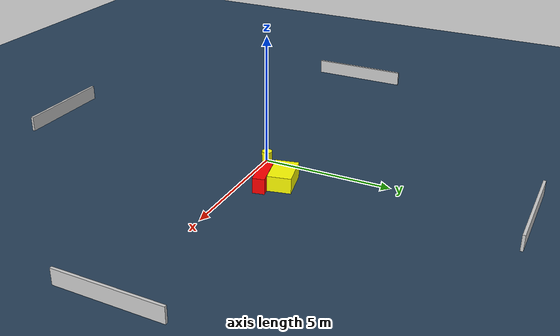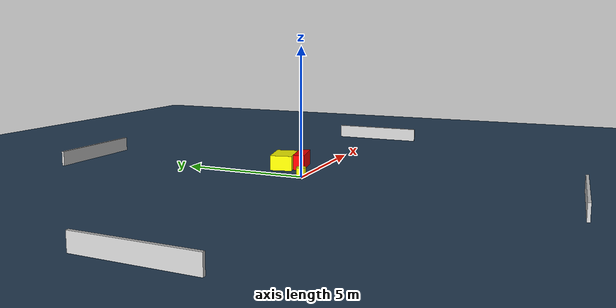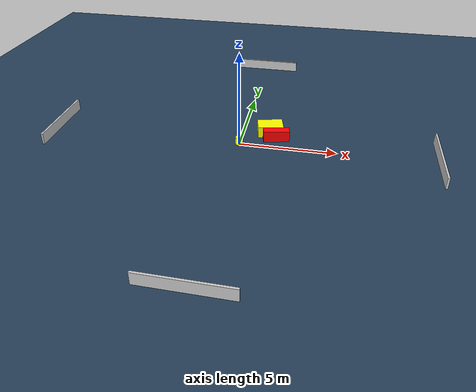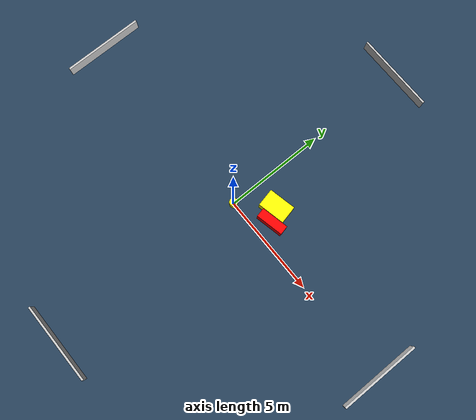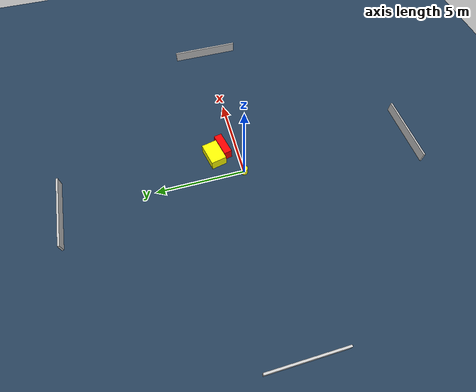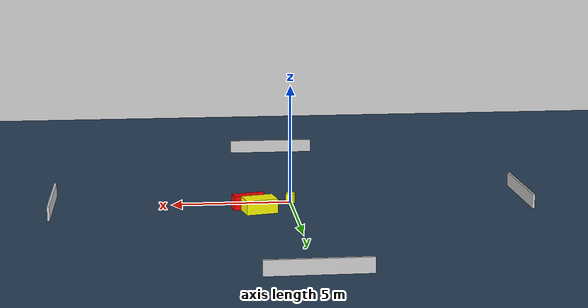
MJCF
<?xml version="1.0" ?>
<mujoco model="generated_environment">
  <option timestep="0.01" integrator="RK4" cone="elliptic"/>
  <default>
    <geom density="1"/>
  </default>
  <asset>
    <texture builtin="gradient" height="3072" name="skybox" rgb1="0.3 0.5 0.7" rgb2="0 0 0" type="skybox" width="512"/>
    <texture builtin="checker" height="300" name="groundplane" rgb1="0.2 0.3 0.4" rgb2="0.1 0.2 0.3" type="2d" width="300"/>
    <material name="groundplane" reflectance="0.2" texrepeat="5 5" texture="groundplane"/>
  </asset>
  <worldbody>
    <light dir="0 0 -1" directional="true" pos="0 0 1.5"/>
    <geom condim="3" friction="0.5 0.005 0.001" material="groundplane" name="floor" pos="0 0 0" size="0 0 0.05" type="plane"/>
    <body name="walls">
      <geom name="wall_1" condim="4" pos="-10.0 0.0 0.3" rgba="0.800000011920929 0.800000011920929 0.800000011920929 1.0" size="0.05 2.0 0.3" type="box"/>
      <geom name="wall_2" condim="4" pos="10.0 0.0 0.3" rgba="0.800000011920929 0.800000011920929 0.800000011920929 1.0" size="0.05 2.0 0.3" type="box"/>
      <geom name="wall_3" condim="4" pos="0.0 -10.0 0.3" rgba="0.800000011920929 0.800000011920929 0.800000011920929 1.0" size="2.0 0.05 0.3" type="box"/>
      <geom name="wall_4" condim="4" pos="0.0 10.0 0.3" rgba="0.800000011920929 0.800000011920929 0.800000011920929 1.0" size="2.0 0.05 0.3" type="box"/>
    </body>
    <body name="robot">
      <joint name="joint_x" type="slide" pos="0 0 0" axis="1 0 0"/>
      <joint name="joint_y" type="slide" pos="0 0 0" axis="0 1 0"/>
      <geom name="robot" type="cylinder" pos="0.0 0.0 0.2" size="0.2 0.2 0.0" mass="5.0" friction="1.0 0.005 0.0001" condim="4" rgba="1.0 1.0 0.0 1.0"/>
    </body>
    <body name="obstacle_1_movable">
      <geom name="obstacle_1_movable" condim="4" pos="1.4242115977325365 1.3818420619549965 0.3" euler="0 0 12.435857908502207" friction="0.0 0.005 0.001" rgba="1.0 1.0 0.0 1.0" size="0.6711230385880065 0.4454811746540879 0.3" type="box" mass="0.1"/>
      <joint type="free"/>
    </body>
    <body name="obstacle_2_static">
      <geom name="obstacle_2_static" condim="4" pos="1.832759889264371 0.7692964913857783 0.3" euler="0 0 282.56069489236864" friction="0.0 0.005 0.001" rgba="1.0 0.0 0.0 1.0" size="0.2279345605531013 0.6802970241158262 0.3" type="box"/>
    </body>
  </worldbody>
  <actuator>
    <motor name="actuator_x" joint="joint_x" gear="1" ctrlrange="-1 1"/>
    <motor name="actuator_y" joint="joint_y" gear="1" ctrlrange="-1 1"/>
  </actuator>
</mujoco>
